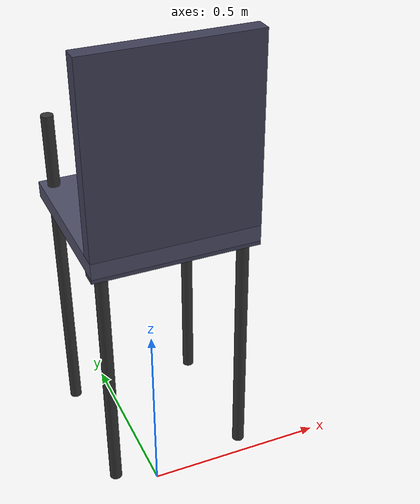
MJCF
<mujoco model="chair">
  <!-- Lab chair: ~0.45m × 0.45m × 0.9m -->
  <worldbody>
    <body name="chair" pos="0 0 0.45">
      <geom name="seat" type="box" size="0.2 0.2 0.02" pos="0 0 0.43"
            rgba="0.3 0.3 0.4 1" mass="3"/>
      <geom name="back" type="box" size="0.2 0.02 0.25" pos="0 -0.18 0.65"
            rgba="0.25 0.25 0.35 1" mass="2"/>
      <!-- Legs -->
      <geom name="cleg_1" type="cylinder" size="0.015 0.42" pos="0.17 0.17 0.21" rgba="0.2 0.2 0.2 1" mass="1"/>
      <geom name="cleg_2" type="cylinder" size="0.015 0.42" pos="-0.17 0.17 0.21" rgba="0.2 0.2 0.2 1" mass="1"/>
      <geom name="cleg_3" type="cylinder" size="0.015 0.42" pos="0.17 -0.17 0.21" rgba="0.2 0.2 0.2 1" mass="1"/>
      <geom name="cleg_4" type="cylinder" size="0.015 0.42" pos="-0.17 -0.17 0.21" rgba="0.2 0.2 0.2 1" mass="1"/>
      <freejoint/>
    </body>
  </worldbody>
</mujoco>
